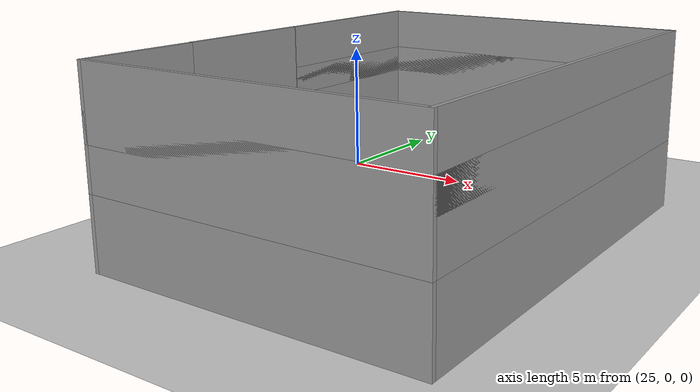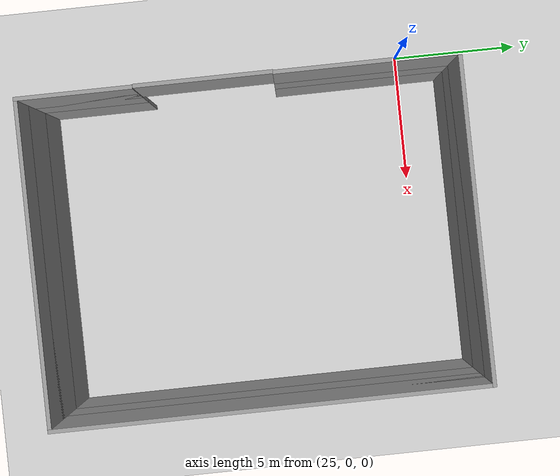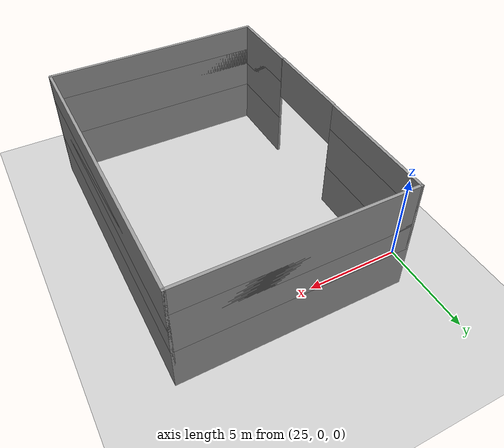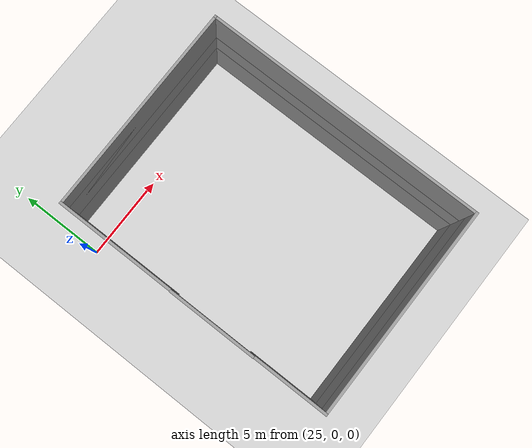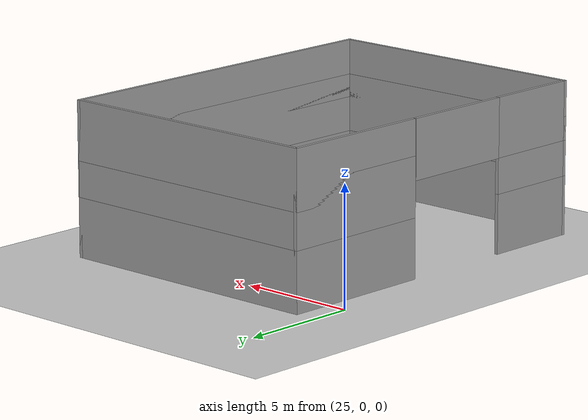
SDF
<sdf version="1.6">
 <world name="default">
  <light name="sun" type="directional">
   <pose>0 0 10 0 -0 0</pose>
   <diffuse>0.8 0.8 0.8 1</diffuse>
   <specular>0.2 0.2 0.2 1</specular>
   <attenuation>
    <range>1000</range>
    <constant>0.9</constant>
    <linear>0.01</linear>
    <quadratic>0.001</quadratic>
   </attenuation>
   <direction>-0.5 0.1 -0.9</direction>
  </light>
  <model name="ground_plane">
   <static>1</static>
   <link name="link">
    <collision name="collision">
     <geometry><plane><normal>0 0 1</normal><size>100 100</size></plane></geometry>
     <surface><friction><ode><mu>100</mu><mu2>50</mu2></ode></friction></surface>
    </collision>
    <visual name="visual">
     <cast_shadows>0</cast_shadows>
     <geometry><plane><normal>0 0 1</normal><size>100 100</size></plane></geometry>
     <material>
      <script><uri>file://media/materials/scripts/gazebo.material</uri><name>Gazebo/Grey</name></script>
     </material>
    </visual>
   </link>
  </model>
  <gravity>0 0 -9.8</gravity>
  <magnetic_field>6e-06 2.3e-05 -4.2e-05</magnetic_field>
  <atmosphere type="adiabatic"/>
  <physics name="default_physics" default="0" type="ode">
   <max_step_size>0.001</max_step_size>
   <real_time_factor>1</real_time_factor>
   <real_time_update_rate>1000</real_time_update_rate>
  </physics>
  <scene><ambient>0.4 0.4 0.4 1</ambient><background>0.7 0.7 0.7 1</background><shadows>1</shadows></scene>
  <audio><device>default</device></audio>
  <spherical_coordinates>
   <surface_model>EARTH_WGS84</surface_model>
   <latitude_deg>0</latitude_deg>
   <longitude_deg>0</longitude_deg>
   <elevation>0</elevation>
   <heading_deg>0</heading_deg>
  </spherical_coordinates>
  <model name="PaperTestTunnelHouse">
   <pose>31.9195 -6.31952 0 0 -0 0</pose>
   <link name="Wall_10">
    <collision name="Wall_10_Collision">
     <geometry><box><size>4.25 0.15 2.5</size></box></geometry>
     <pose>0 0 1.25 0 -0 0</pose>
    </collision>
    <visual name="Wall_10_Visual">
     <pose>0 0 1.25 0 -0 0</pose>
     <geometry><box><size>4.25 0.15 2.5</size></box></geometry>
     <material>
      <script><uri>file://media/materials/scripts/gazebo.material</uri><name>Gazebo/Grey</name></script>
      <ambient>1 1 1 1</ambient>
     </material>
     <meta><layer>0</layer></meta>
    </visual>
    <pose>-5.925 -5.875 0 0 -0 1.5708</pose>
   </link>
   <link name="Wall_6">
    <collision name="Wall_6_Collision">
     <geometry><box><size>6.75 0.15 2.5</size></box></geometry>
     <pose>0 0 1.25 0 -0 0</pose>
    </collision>
    <visual name="Wall_6_Visual">
     <pose>0 0 1.25 0 -0 0</pose>
     <geometry><box><size>6.75 0.15 2.5</size></box></geometry>
     <material>
      <script><uri>file://media/materials/scripts/gazebo.material</uri><name>Gazebo/Grey</name></script>
      <ambient>1 1 1 1</ambient>
     </material>
     <meta><layer>0</layer></meta>
    </visual>
    <pose>-5.925 4.625 0 0 -0 1.5708</pose>
   </link>
   <link name="Wall_7">
    <collision name="Wall_7_Collision">
     <geometry><box><size>12 0.15 2.5</size></box></geometry>
     <pose>0 0 1.25 0 -0 0</pose>
    </collision>
    <visual name="Wall_7_Visual">
     <pose>0 0 1.25 0 -0 0</pose>
     <geometry><box><size>12 0.15 2.5</size></box></geometry>
     <material>
      <script><uri>file://media/materials/scripts/gazebo.material</uri><name>Gazebo/Grey</name></script>
      <ambient>1 1 1 1</ambient>
     </material>
     <meta><layer>0</layer></meta>
    </visual>
    <pose>-0 7.925 0 0 -0 0</pose>
   </link>
   <link name="Wall_8">
    <collision name="Wall_8_Collision">
     <geometry><box><size>16 0.15 2.5</size></box></geometry>
     <pose>0 0 1.25 0 -0 0</pose>
    </collision>
    <visual name="Wall_8_Visual">
     <pose>0 0 1.25 0 -0 0</pose>
     <geometry><box><size>16 0.15 2.5</size></box></geometry>
     <material>
      <script><uri>file://media/materials/scripts/gazebo.material</uri><name>Gazebo/Grey</name></script>
      <ambient>1 1 1 1</ambient>
     </material>
     <meta><layer>0</layer></meta>
    </visual>
    <pose>5.925 0 0 0 -0 -1.5708</pose>
   </link>
   <link name="Wall_9">
    <collision name="Wall_9_Collision">
     <geometry><box><size>12 0.15 2.5</size></box></geometry>
     <pose>0 0 1.25 0 -0 0</pose>
    </collision>
    <visual name="Wall_9_Visual">
     <pose>0 0 1.25 0 -0 0</pose>
     <geometry><box><size>12 0.15 2.5</size></box></geometry>
     <material>
      <script><uri>file://media/materials/scripts/gazebo.material</uri><name>Gazebo/Grey</name></script>
      <ambient>1 1 1 1</ambient>
     </material>
     <meta><layer>0</layer></meta>
    </visual>
    <pose>-0 -7.925 0 0 -0 3.14159</pose>
   </link>
   <static>1</static>
  </model>
  <model name="PaperTestTunnelHouse_0">
   <pose>31.9195 -6.319 2.5 0 -0 0</pose>
   <link name="Wall_10">
    <collision name="Wall_10_Collision">
     <geometry><box><size>4.25 0.15 2.5</size></box></geometry>
     <pose>0 0 1.25 0 -0 0</pose>
    </collision>
    <visual name="Wall_10_Visual">
     <pose>0 0 1.25 0 -0 0</pose>
     <geometry><box><size>4.25 0.15 2.5</size></box></geometry>
     <material>
      <script><uri>file://media/materials/scripts/gazebo.material</uri><name>Gazebo/Grey</name></script>
      <ambient>1 1 1 1</ambient>
     </material>
     <meta><layer>0</layer></meta>
    </visual>
    <pose>-5.925 -5.875 0 0 -0 1.5708</pose>
   </link>
   <link name="Wall_6">
    <collision name="Wall_6_Collision">
     <geometry><box><size>6.75 0.15 2.5</size></box></geometry>
     <pose>0 0 1.25 0 -0 0</pose>
    </collision>
    <visual name="Wall_6_Visual">
     <pose>0 0 1.25 0 -0 0</pose>
     <geometry><box><size>6.75 0.15 2.5</size></box></geometry>
     <material>
      <script><uri>file://media/materials/scripts/gazebo.material</uri><name>Gazebo/Grey</name></script>
      <ambient>1 1 1 1</ambient>
     </material>
     <meta><layer>0</layer></meta>
    </visual>
    <pose>-5.925 4.625 0 0 -0 1.5708</pose>
   </link>
   <link name="Wall_7">
    <collision name="Wall_7_Collision">
     <geometry><box><size>12 0.15 2.5</size></box></geometry>
     <pose>0 0 1.25 0 -0 0</pose>
    </collision>
    <visual name="Wall_7_Visual">
     <pose>0 0 1.25 0 -0 0</pose>
     <geometry><box><size>12 0.15 2.5</size></box></geometry>
     <material>
      <script><uri>file://media/materials/scripts/gazebo.material</uri><name>Gazebo/Grey</name></script>
      <ambient>1 1 1 1</ambient>
     </material>
     <meta><layer>0</layer></meta>
    </visual>
    <pose>-0 7.925 0 0 -0 0</pose>
   </link>
   <link name="Wall_8">
    <collision name="Wall_8_Collision">
     <geometry><box><size>16 0.15 2.5</size></box></geometry>
     <pose>0 0 1.25 0 -0 0</pose>
    </collision>
    <visual name="Wall_8_Visual">
     <pose>0 0 1.25 0 -0 0</pose>
     <geometry><box><size>16 0.15 2.5</size></box></geometry>
     <material>
      <script><uri>file://media/materials/scripts/gazebo.material</uri><name>Gazebo/Grey</name></script>
      <ambient>1 1 1 1</ambient>
     </material>
     <meta><layer>0</layer></meta>
    </visual>
    <pose>5.925 0 0 0 -0 -1.5708</pose>
   </link>
   <link name="Wall_9">
    <collision name="Wall_9_Collision">
     <geometry><box><size>12 0.15 2.5</size></box></geometry>
     <pose>0 0 1.25 0 -0 0</pose>
    </collision>
    <visual name="Wall_9_Visual">
     <pose>0 0 1.25 0 -0 0</pose>
     <geometry><box><size>12 0.15 2.5</size></box></geometry>
     <material>
      <script><uri>file://media/materials/scripts/gazebo.material</uri><name>Gazebo/Grey</name></script>
      <ambient>1 1 1 1</ambient>
     </material>
     <meta><layer>0</layer></meta>
    </visual>
    <pose>-0 -7.925 0 0 -0 3.14159</pose>
   </link>
   <static>1</static>
  </model>
  <model name="5mWall">
   <pose>25.971 -7.56033 4 0 -0 0</pose>
   <link name="Wall_0">
    <collision name="Wall_0_Collision">
     <geometry><box><size>5 0.15 2.5</size></box></geometry>
     <pose>0 0 1.25 0 -0 0</pose>
    </collision>
    <visual name="Wall_0_Visual">
     <pose>0 0 1.25 0 -0 0</pose>
     <geometry><box><size>5 0.15 2.5</size></box></geometry>
     <material>
      <script><uri>file://media/materials/scripts/gazebo.material</uri><name>Gazebo/Grey</name></script>
      <ambient>1 1 1 1</ambient>
     </material>
     <meta><layer>0</layer></meta>
    </visual>
    <pose>0 -0 0 0 -0 1.5708</pose>
   </link>
   <static>1</static>
  </model>
  <model name="PaperTestTunnelHouse_1">
   <pose>31.9195 -6.319 4 0 -0 0</pose>
   <link name="Wall_10">
    <collision name="Wall_10_Collision">
     <geometry><box><size>4.25 0.15 2.5</size></box></geometry>
     <pose>0 0 1.25 0 -0 0</pose>
    </collision>
    <visual name="Wall_10_Visual">
     <pose>0 0 1.25 0 -0 0</pose>
     <geometry><box><size>4.25 0.15 2.5</size></box></geometry>
     <material>
      <script><uri>file://media/materials/scripts/gazebo.material</uri><name>Gazebo/Grey</name></script>
      <ambient>1 1 1 1</ambient>
     </material>
     <meta><layer>0</layer></meta>
    </visual>
    <pose>-5.925 -5.875 0 0 -0 1.5708</pose>
   </link>
   <link name="Wall_6">
    <collision name="Wall_6_Collision">
     <geometry><box><size>6.75 0.15 2.5</size></box></geometry>
     <pose>0 0 1.25 0 -0 0</pose>
    </collision>
    <visual name="Wall_6_Visual">
     <pose>0 0 1.25 0 -0 0</pose>
     <geometry><box><size>6.75 0.15 2.5</size></box></geometry>
     <material>
      <script><uri>file://media/materials/scripts/gazebo.material</uri><name>Gazebo/Grey</name></script>
      <ambient>1 1 1 1</ambient>
     </material>
     <meta><layer>0</layer></meta>
    </visual>
    <pose>-5.925 4.625 0 0 -0 1.5708</pose>
   </link>
   <link name="Wall_7">
    <collision name="Wall_7_Collision">
     <geometry><box><size>12 0.15 2.5</size></box></geometry>
     <pose>0 0 1.25 0 -0 0</pose>
    </collision>
    <visual name="Wall_7_Visual">
     <pose>0 0 1.25 0 -0 0</pose>
     <geometry><box><size>12 0.15 2.5</size></box></geometry>
     <material>
      <script><uri>file://media/materials/scripts/gazebo.material</uri><name>Gazebo/Grey</name></script>
      <ambient>1 1 1 1</ambient>
     </material>
     <meta><layer>0</layer></meta>
    </visual>
    <pose>-0 7.925 0 0 -0 0</pose>
   </link>
   <link name="Wall_8">
    <collision name="Wall_8_Collision">
     <geometry><box><size>16 0.15 2.5</size></box></geometry>
     <pose>0 0 1.25 0 -0 0</pose>
    </collision>
    <visual name="Wall_8_Visual">
     <pose>0 0 1.25 0 -0 0</pose>
     <geometry><box><size>16 0.15 2.5</size></box></geometry>
     <material>
      <script><uri>file://media/materials/scripts/gazebo.material</uri><name>Gazebo/Grey</name></script>
      <ambient>1 1 1 1</ambient>
     </material>
     <meta><layer>0</layer></meta>
    </visual>
    <pose>5.925 0 0 0 -0 -1.5708</pose>
   </link>
   <link name="Wall_9">
    <collision name="Wall_9_Collision">
     <geometry><box><size>12 0.15 2.5</size></box></geometry>
     <pose>0 0 1.25 0 -0 0</pose>
    </collision>
    <visual name="Wall_9_Visual">
     <pose>0 0 1.25 0 -0 0</pose>
     <geometry><box><size>12 0.15 2.5</size></box></geometry>
     <material>
      <script><uri>file://media/materials/scripts/gazebo.material</uri><name>Gazebo/Grey</name></script>
      <ambient>1 1 1 1</ambient>
     </material>
     <meta><layer>0</layer></meta>
    </visual>
    <pose>-0 -7.925 0 0 -0 3.14159</pose>
   </link>
   <static>1</static>
  </model>
 </world>
</sdf>
